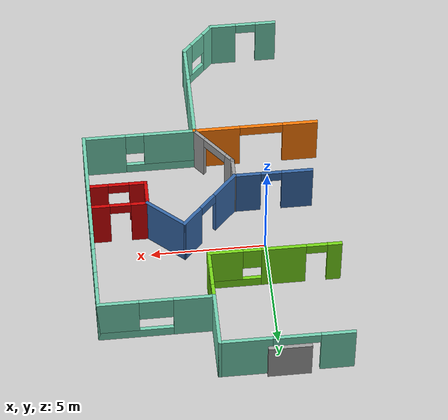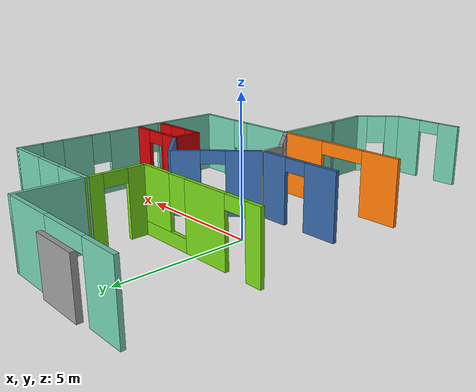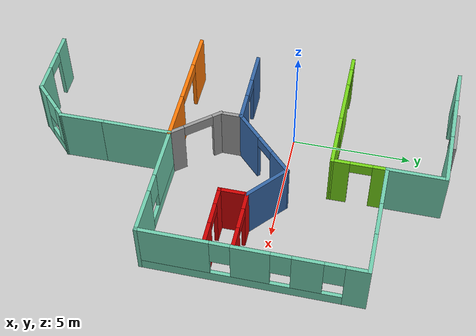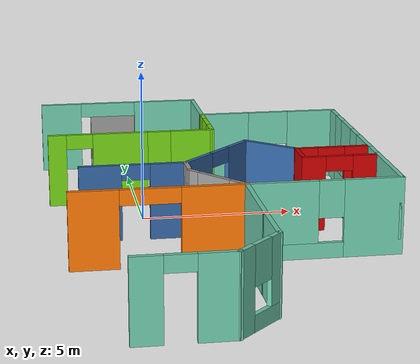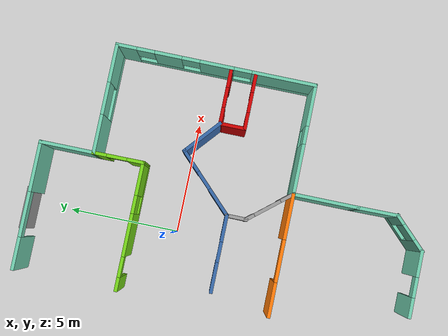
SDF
<sdf version="1.6">
 <model name="model">
  <pose>-1.34408 -2.0758 0 0 -0 0</pose>
  <link name="Door_1">
   <collision name="Door_1_Collision">
    <geometry><box><size>1.8483 0.2 2</size></box></geometry>
    <pose>0 0 1 0 -0 0</pose>
   </collision>
   <visual name="Door_1_Visual">
    <pose>0 0 1 0 -0 0</pose>
    <geometry><box><size>1.8483 0.2 2</size></box></geometry>
    <material>
     <script><uri>file://media/materials/scripts/gazebo.material</uri><name>Gazebo/Grey</name></script>
    </material>
   </visual>
   <pose>1.0621 8.71185 0 0 -0 0</pose>
  </link>
  <link name="Wall_10">
   <pose>6.41224 6.21961 0 0 -0 0</pose>
   <visual name="Wall_10_Visual_0">
    <pose>-1.6072 0 1.25 0 -0 0</pose>
    <geometry><box><size>1.78559 0.15 2.5</size></box></geometry>
    <material>
     <script><uri>file://media/materials/scripts/gazebo.material</uri><name>Gazebo/Grey</name></script>
     <ambient>0.435294 0.796078 0.67451 1</ambient>
    </material>
    <meta><layer>0</layer></meta>
   </visual>
   <collision name="Wall_10_Collision_0">
    <geometry><box><size>1.78559 0.15 2.5</size></box></geometry>
    <pose>-1.6072 0 1.25 0 -0 0</pose>
   </collision>
   <visual name="Wall_10_Visual_1">
    <pose>0.892797 0 0.25 0 -0 0</pose>
    <geometry><box><size>3.21441 0.15 0.5</size></box></geometry>
    <material>
     <script><uri>file://media/materials/scripts/gazebo.material</uri><name>Gazebo/Grey</name></script>
     <ambient>0.435294 0.796078 0.67451 1</ambient>
    </material>
    <meta><layer>0</layer></meta>
   </visual>
   <collision name="Wall_10_Collision_1">
    <geometry><box><size>3.21441 0.15 0.5</size></box></geometry>
    <pose>0.892797 0 0.25 0 -0 0</pose>
   </collision>
   <visual name="Wall_10_Visual_2">
    <pose>1.61399 0 1.5 0 -0 0</pose>
    <geometry><box><size>1.77201 0.15 2</size></box></geometry>
    <material>
     <script><uri>file://media/materials/scripts/gazebo.material</uri><name>Gazebo/Grey</name></script>
     <ambient>0.435294 0.796078 0.67451 1</ambient>
    </material>
    <meta><layer>0</layer></meta>
   </visual>
   <collision name="Wall_10_Collision_2">
    <geometry><box><size>1.77201 0.15 2</size></box></geometry>
    <pose>1.61399 0 1.5 0 -0 0</pose>
   </collision>
   <visual name="Wall_10_Visual_3">
    <pose>0.006791 0 1.9 0 -0 0</pose>
    <geometry><box><size>1.4424 0.15 1.2</size></box></geometry>
    <material>
     <script><uri>file://media/materials/scripts/gazebo.material</uri><name>Gazebo/Grey</name></script>
     <ambient>0.435294 0.796078 0.67451 1</ambient>
    </material>
    <meta><layer>0</layer></meta>
   </visual>
   <collision name="Wall_10_Collision_3">
    <geometry><box><size>1.4424 0.15 1.2</size></box></geometry>
    <pose>0.006791 0 1.9 0 -0 0</pose>
   </collision>
  </link>
  <link name="Wall_11">
   <pose>8.83724 1.79461 0 0 -0 -1.5708</pose>
   <visual name="Wall_11_Visual_0">
    <pose>-4.02485 0 1.25 0 -0 0</pose>
    <geometry><box><size>0.950301 0.15 2.5</size></box></geometry>
    <material>
     <script><uri>file://media/materials/scripts/gazebo.material</uri><name>Gazebo/Grey</name></script>
     <ambient>0.435294 0.796078 0.67451 1</ambient>
    </material>
    <meta><layer>0</layer></meta>
   </visual>
   <collision name="Wall_11_Collision_0">
    <geometry><box><size>0.950301 0.15 2.5</size></box></geometry>
    <pose>-4.02485 0 1.25 0 -0 0</pose>
   </collision>
   <visual name="Wall_11_Visual_1">
    <pose>0.47515 0 0.25 0 -0 0</pose>
    <geometry><box><size>8.0497 0.15 0.5</size></box></geometry>
    <material>
     <script><uri>file://media/materials/scripts/gazebo.material</uri><name>Gazebo/Grey</name></script>
     <ambient>0.435294 0.796078 0.67451 1</ambient>
    </material>
    <meta><layer>0</layer></meta>
   </visual>
   <collision name="Wall_11_Collision_1">
    <geometry><box><size>8.0497 0.15 0.5</size></box></geometry>
    <pose>0.47515 0 0.25 0 -0 0</pose>
   </collision>
   <visual name="Wall_11_Visual_2">
    <pose>-2.14022 0 1.5 0 -0 0</pose>
    <geometry><box><size>1.21896 0.15 2</size></box></geometry>
    <material>
     <script><uri>file://media/materials/scripts/gazebo.material</uri><name>Gazebo/Grey</name></script>
     <ambient>0.435294 0.796078 0.67451 1</ambient>
    </material>
    <meta><layer>0</layer></meta>
   </visual>
   <collision name="Wall_11_Collision_2">
    <geometry><box><size>1.21896 0.15 2</size></box></geometry>
    <pose>-2.14022 0 1.5 0 -0 0</pose>
   </collision>
   <visual name="Wall_11_Visual_3">
    <pose>0.031685 0 1.5 0 -0 0</pose>
    <geometry><box><size>1.52486 0.15 2</size></box></geometry>
    <material>
     <script><uri>file://media/materials/scripts/gazebo.material</uri><name>Gazebo/Grey</name></script>
     <ambient>0.435294 0.796078 0.67451 1</ambient>
    </material>
    <meta><layer>0</layer></meta>
   </visual>
   <collision name="Wall_11_Collision_3">
    <geometry><box><size>1.52486 0.15 2</size></box></geometry>
    <pose>0.031685 0 1.5 0 -0 0</pose>
   </collision>
   <visual name="Wall_11_Visual_4">
    <pose>3.04706 0 1.5 0 -0 0</pose>
    <geometry><box><size>2.90589 0.15 2</size></box></geometry>
    <material>
     <script><uri>file://media/materials/scripts/gazebo.material</uri><name>Gazebo/Grey</name></script>
     <ambient>0.435294 0.796078 0.67451 1</ambient>
    </material>
    <meta><layer>0</layer></meta>
   </visual>
   <collision name="Wall_11_Collision_4">
    <geometry><box><size>2.90589 0.15 2</size></box></geometry>
    <pose>3.04706 0 1.5 0 -0 0</pose>
   </collision>
   <visual name="Wall_11_Visual_5">
    <pose>-3.1497 0 1.9 0 -0 0</pose>
    <geometry><box><size>0.8 0.15 1.2</size></box></geometry>
    <material>
     <script><uri>file://media/materials/scripts/gazebo.material</uri><name>Gazebo/Grey</name></script>
     <ambient>0.435294 0.796078 0.67451 1</ambient>
    </material>
    <meta><layer>0</layer></meta>
   </visual>
   <collision name="Wall_11_Collision_5">
    <geometry><box><size>0.8 0.15 1.2</size></box></geometry>
    <pose>-3.1497 0 1.9 0 -0 0</pose>
   </collision>
   <visual name="Wall_11_Visual_6">
    <pose>-1.13074 0 1.9 0 -0 0</pose>
    <geometry><box><size>0.8 0.15 1.2</size></box></geometry>
    <material>
     <script><uri>file://media/materials/scripts/gazebo.material</uri><name>Gazebo/Grey</name></script>
     <ambient>0.435294 0.796078 0.67451 1</ambient>
    </material>
    <meta><layer>0</layer></meta>
   </visual>
   <collision name="Wall_11_Collision_6">
    <geometry><box><size>0.8 0.15 1.2</size></box></geometry>
    <pose>-1.13074 0 1.9 0 -0 0</pose>
   </collision>
   <visual name="Wall_11_Visual_7">
    <pose>1.19411 0 1.9 0 -0 0</pose>
    <geometry><box><size>0.8 0.15 1.2</size></box></geometry>
    <material>
     <script><uri>file://media/materials/scripts/gazebo.material</uri><name>Gazebo/Grey</name></script>
     <ambient>0.435294 0.796078 0.67451 1</ambient>
    </material>
    <meta><layer>0</layer></meta>
   </visual>
   <collision name="Wall_11_Collision_7">
    <geometry><box><size>0.8 0.15 1.2</size></box></geometry>
    <pose>1.19411 0 1.9 0 -0 0</pose>
   </collision>
  </link>
  <link name="Wall_12">
   <pose>6.41224 -2.63039 0 0 -0 3.14159</pose>
   <visual name="Wall_12_Visual_0">
    <pose>-1.55241 0 1.25 0 -0 0</pose>
    <geometry><box><size>1.89517 0.15 2.5</size></box></geometry>
    <material>
     <script><uri>file://media/materials/scripts/gazebo.material</uri><name>Gazebo/Grey</name></script>
     <ambient>0.435294 0.796078 0.67451 1</ambient>
    </material>
    <meta><layer>0</layer></meta>
   </visual>
   <collision name="Wall_12_Collision_0">
    <geometry><box><size>1.89517 0.15 2.5</size></box></geometry>
    <pose>-1.55241 0 1.25 0 -0 0</pose>
   </collision>
   <visual name="Wall_12_Visual_1">
    <pose>0.947587 0 0.25 0 -0 0</pose>
    <geometry><box><size>3.10483 0.15 0.5</size></box></geometry>
    <material>
     <script><uri>file://media/materials/scripts/gazebo.material</uri><name>Gazebo/Grey</name></script>
     <ambient>0.435294 0.796078 0.67451 1</ambient>
    </material>
    <meta><layer>0</layer></meta>
   </visual>
   <collision name="Wall_12_Collision_1">
    <geometry><box><size>3.10483 0.15 0.5</size></box></geometry>
    <pose>0.947587 0 0.25 0 -0 0</pose>
   </collision>
   <visual name="Wall_12_Visual_2">
    <pose>1.34759 0 1.5 0 -0 0</pose>
    <geometry><box><size>2.30483 0.15 2</size></box></geometry>
    <material>
     <script><uri>file://media/materials/scripts/gazebo.material</uri><name>Gazebo/Grey</name></script>
     <ambient>0.435294 0.796078 0.67451 1</ambient>
    </material>
    <meta><layer>0</layer></meta>
   </visual>
   <collision name="Wall_12_Collision_2">
    <geometry><box><size>2.30483 0.15 2</size></box></geometry>
    <pose>1.34759 0 1.5 0 -0 0</pose>
   </collision>
   <visual name="Wall_12_Visual_3">
    <pose>-0.204827 0 1.9 0 -0 0</pose>
    <geometry><box><size>0.8 0.15 1.2</size></box></geometry>
    <material>
     <script><uri>file://media/materials/scripts/gazebo.material</uri><name>Gazebo/Grey</name></script>
     <ambient>0.435294 0.796078 0.67451 1</ambient>
    </material>
    <meta><layer>0</layer></meta>
   </visual>
   <collision name="Wall_12_Collision_3">
    <geometry><box><size>0.8 0.15 1.2</size></box></geometry>
    <pose>-0.204827 0 1.9 0 -0 0</pose>
   </collision>
  </link>
  <link name="Wall_13">
   <collision name="Wall_13_Collision">
    <geometry><box><size>3 0.15 2.5</size></box></geometry>
    <pose>0 0 1.25 0 -0 0</pose>
   </collision>
   <visual name="Wall_13_Visual">
    <pose>0 0 1.25 0 -0 0</pose>
    <geometry><box><size>3 0.15 2.5</size></box></geometry>
    <material>
     <script><uri>file://media/materials/scripts/gazebo.material</uri><name>Gazebo/Grey</name></script>
     <ambient>0.435294 0.796078 0.67451 1</ambient>
    </material>
    <meta><layer>0</layer></meta>
   </visual>
   <pose>3.98724 -4.05539 0 0 -0 -1.5708</pose>
  </link>
  <link name="Wall_31">
   <pose>0.83091 0.006871 0 0 -0 0</pose>
   <visual name="Wall_31_Visual_0">
    <pose>-1.06671 0 1.25 0 -0 0</pose>
    <geometry><box><size>1.36658 0.15 2.5</size></box></geometry>
    <material>
     <script><uri>file://media/materials/scripts/gazebo.material</uri><name>Gazebo/Grey</name></script>
     <ambient>0.203922 0.396078 0.643137 1</ambient>
    </material>
    <meta><layer>0</layer></meta>
   </visual>
   <collision name="Wall_31_Collision_0">
    <geometry><box><size>1.36658 0.15 2.5</size></box></geometry>
    <pose>-1.06671 0 1.25 0 -0 0</pose>
   </collision>
   <visual name="Wall_31_Visual_1">
    <pose>1.13329 0 1.25 0 -0 0</pose>
    <geometry><box><size>1.23341 0.15 2.5</size></box></geometry>
    <material>
     <script><uri>file://media/materials/scripts/gazebo.material</uri><name>Gazebo/Grey</name></script>
     <ambient>0.203922 0.396078 0.643137 1</ambient>
    </material>
    <meta><layer>0</layer></meta>
   </visual>
   <collision name="Wall_31_Collision_1">
    <geometry><box><size>1.23341 0.15 2.5</size></box></geometry>
    <pose>1.13329 0 1.25 0 -0 0</pose>
   </collision>
   <visual name="Wall_31_Visual_2">
    <pose>0.066585 0 2.25 0 -0 0</pose>
    <geometry><box><size>0.9 0.15 0.5</size></box></geometry>
    <material>
     <script><uri>file://media/materials/scripts/gazebo.material</uri><name>Gazebo/Grey</name></script>
     <ambient>0.203922 0.396078 0.643137 1</ambient>
    </material>
    <meta><layer>0</layer></meta>
   </visual>
   <collision name="Wall_31_Collision_2">
    <geometry><box><size>0.9 0.15 0.5</size></box></geometry>
    <pose>0.066585 0 2.25 0 -0 0</pose>
   </collision>
  </link>
  <link name="Wall_35">
   <pose>3.69031 1.19128 0 0 -0 0.785398</pose>
   <visual name="Wall_35_Visual_0">
    <pose>-1.02961 0 1.25 0 -0 0</pose>
    <geometry><box><size>1.44079 0.15 2.5</size></box></geometry>
    <material>
     <script><uri>file://media/materials/scripts/gazebo.material</uri><name>Gazebo/Grey</name></script>
     <ambient>0.203922 0.396078 0.643137 1</ambient>
    </material>
    <meta><layer>0</layer></meta>
   </visual>
   <collision name="Wall_35_Collision_0">
    <geometry><box><size>1.44079 0.15 2.5</size></box></geometry>
    <pose>-1.02961 0 1.25 0 -0 0</pose>
   </collision>
   <visual name="Wall_35_Visual_1">
    <pose>1.17039 0 1.25 0 -0 0</pose>
    <geometry><box><size>1.15921 0.15 2.5</size></box></geometry>
    <material>
     <script><uri>file://media/materials/scripts/gazebo.material</uri><name>Gazebo/Grey</name></script>
     <ambient>0.203922 0.396078 0.643137 1</ambient>
    </material>
    <meta><layer>0</layer></meta>
   </visual>
   <collision name="Wall_35_Collision_1">
    <geometry><box><size>1.15921 0.15 2.5</size></box></geometry>
    <pose>1.17039 0 1.25 0 -0 0</pose>
   </collision>
   <visual name="Wall_35_Visual_2">
    <pose>0.140787 0 2.25 0 -0 0</pose>
    <geometry><box><size>0.9 0.15 0.5</size></box></geometry>
    <material>
     <script><uri>file://media/materials/scripts/gazebo.material</uri><name>Gazebo/Grey</name></script>
     <ambient>0.203922 0.396078 0.643137 1</ambient>
    </material>
    <meta><layer>0</layer></meta>
   </visual>
   <collision name="Wall_35_Collision_2">
    <geometry><box><size>0.9 0.15 0.5</size></box></geometry>
    <pose>0.140787 0 2.25 0 -0 0</pose>
   </collision>
  </link>
  <link name="Wall_37">
   <pose>1.19907 4.02731 0 0 -0 0</pose>
   <visual name="Wall_37_Visual_0">
    <pose>-2.56055 0 1.25 0 -0 0</pose>
    <geometry><box><size>0.628904 0.15 2.5</size></box></geometry>
    <material>
     <script><uri>file://media/materials/scripts/gazebo.material</uri><name>Gazebo/Grey</name></script>
     <ambient>0.45098 0.823529 0.0862745 1</ambient>
    </material>
    <meta><layer>0</layer></meta>
   </visual>
   <collision name="Wall_37_Collision_0">
    <geometry><box><size>0.628904 0.15 2.5</size></box></geometry>
    <pose>-2.56055 0 1.25 0 -0 0</pose>
   </collision>
   <visual name="Wall_37_Visual_1">
    <pose>-0.397199 0 1.25 0 -0 0</pose>
    <geometry><box><size>1.89779 0.15 2.5</size></box></geometry>
    <material>
     <script><uri>file://media/materials/scripts/gazebo.material</uri><name>Gazebo/Grey</name></script>
     <ambient>0.45098 0.823529 0.0862745 1</ambient>
    </material>
    <meta><layer>0</layer></meta>
   </visual>
   <collision name="Wall_37_Collision_1">
    <geometry><box><size>1.89779 0.15 2.5</size></box></geometry>
    <pose>-0.397199 0 1.25 0 -0 0</pose>
   </collision>
   <visual name="Wall_37_Visual_2">
    <pose>1.71335 0 0.25 0 -0 0</pose>
    <geometry><box><size>2.3233 0.15 0.5</size></box></geometry>
    <material>
     <script><uri>file://media/materials/scripts/gazebo.material</uri><name>Gazebo/Grey</name></script>
     <ambient>0.45098 0.823529 0.0862745 1</ambient>
    </material>
    <meta><layer>0</layer></meta>
   </visual>
   <collision name="Wall_37_Collision_2">
    <geometry><box><size>2.3233 0.15 0.5</size></box></geometry>
    <pose>1.71335 0 0.25 0 -0 0</pose>
   </collision>
   <visual name="Wall_37_Visual_3">
    <pose>2.11335 0 1.5 0 -0 0</pose>
    <geometry><box><size>1.5233 0.15 2</size></box></geometry>
    <material>
     <script><uri>file://media/materials/scripts/gazebo.material</uri><name>Gazebo/Grey</name></script>
     <ambient>0.45098 0.823529 0.0862745 1</ambient>
    </material>
    <meta><layer>0</layer></meta>
   </visual>
   <collision name="Wall_37_Collision_3">
    <geometry><box><size>1.5233 0.15 2</size></box></geometry>
    <pose>2.11335 0 1.5 0 -0 0</pose>
   </collision>
   <visual name="Wall_37_Visual_4">
    <pose>0.951698 0 1.9 0 -0 0</pose>
    <geometry><box><size>0.8 0.15 1.2</size></box></geometry>
    <material>
     <script><uri>file://media/materials/scripts/gazebo.material</uri><name>Gazebo/Grey</name></script>
     <ambient>0.45098 0.823529 0.0862745 1</ambient>
    </material>
    <meta><layer>0</layer></meta>
   </visual>
   <collision name="Wall_37_Collision_4">
    <geometry><box><size>0.8 0.15 1.2</size></box></geometry>
    <pose>0.951698 0 1.9 0 -0 0</pose>
   </collision>
   <visual name="Wall_37_Visual_5">
    <pose>-1.7961 0 2.25 0 -0 0</pose>
    <geometry><box><size>0.9 0.15 0.5</size></box></geometry>
    <material>
     <script><uri>file://media/materials/scripts/gazebo.material</uri><name>Gazebo/Grey</name></script>
     <ambient>0.45098 0.823529 0.0862745 1</ambient>
    </material>
    <meta><layer>0</layer></meta>
   </visual>
   <collision name="Wall_37_Collision_5">
    <geometry><box><size>0.9 0.15 0.5</size></box></geometry>
    <pose>-1.7961 0 2.25 0 -0 0</pose>
   </collision>
  </link>
  <link name="Wall_38">
   <pose>3.99316 5.12346 0 0 -0 1.57619</pose>
   <visual name="Wall_38_Visual_0">
    <pose>-0.775994 0 1.25 0 -0 0</pose>
    <geometry><box><size>0.790336 0.15 2.5</size></box></geometry>
    <material>
     <script><uri>file://media/materials/scripts/gazebo.material</uri><name>Gazebo/Grey</name></script>
     <ambient>0.45098 0.823529 0.0862745 1</ambient>
    </material>
    <meta><layer>0</layer></meta>
   </visual>
   <collision name="Wall_38_Collision_0">
    <geometry><box><size>0.790336 0.15 2.5</size></box></geometry>
    <pose>-0.775994 0 1.25 0 -0 0</pose>
   </collision>
   <visual name="Wall_38_Visual_1">
    <pose>0.845168 0 1.25 0 -0 0</pose>
    <geometry><box><size>0.651988 0.15 2.5</size></box></geometry>
    <material>
     <script><uri>file://media/materials/scripts/gazebo.material</uri><name>Gazebo/Grey</name></script>
     <ambient>0.45098 0.823529 0.0862745 1</ambient>
    </material>
    <meta><layer>0</layer></meta>
   </visual>
   <collision name="Wall_38_Collision_1">
    <geometry><box><size>0.651988 0.15 2.5</size></box></geometry>
    <pose>0.845168 0 1.25 0 -0 0</pose>
   </collision>
   <visual name="Wall_38_Visual_2">
    <pose>0.069174 0 2.25 0 -0 0</pose>
    <geometry><box><size>0.9 0.15 0.5</size></box></geometry>
    <material>
     <script><uri>file://media/materials/scripts/gazebo.material</uri><name>Gazebo/Grey</name></script>
     <ambient>0.45098 0.823529 0.0862745 1</ambient>
    </material>
    <meta><layer>0</layer></meta>
   </visual>
   <collision name="Wall_38_Collision_2">
    <geometry><box><size>0.9 0.15 0.5</size></box></geometry>
    <pose>0.069174 0 2.25 0 -0 0</pose>
   </collision>
  </link>
  <link name="Wall_40">
   <pose>7.52447 1.10748 0 0 -0 0</pose>
   <visual name="Wall_40_Visual_0">
    <pose>-0.852595 0 1.25 0 -0 0</pose>
    <geometry><box><size>0.794811 0.15 2.5</size></box></geometry>
    <material>
     <script><uri>file://media/materials/scripts/gazebo.material</uri><name>Gazebo/Grey</name></script>
     <ambient>0.8 0 0 1</ambient>
    </material>
    <meta><layer>0</layer></meta>
   </visual>
   <collision name="Wall_40_Collision_0">
    <geometry><box><size>0.794811 0.15 2.5</size></box></geometry>
    <pose>-0.852595 0 1.25 0 -0 0</pose>
   </collision>
   <visual name="Wall_40_Visual_1">
    <pose>0.847405 0 1.25 0 -0 0</pose>
    <geometry><box><size>0.805189 0.15 2.5</size></box></geometry>
    <material>
     <script><uri>file://media/materials/scripts/gazebo.material</uri><name>Gazebo/Grey</name></script>
     <ambient>0.8 0 0 1</ambient>
    </material>
    <meta><layer>0</layer></meta>
   </visual>
   <collision name="Wall_40_Collision_1">
    <geometry><box><size>0.805189 0.15 2.5</size></box></geometry>
    <pose>0.847405 0 1.25 0 -0 0</pose>
   </collision>
   <visual name="Wall_40_Visual_2">
    <pose>-0.005189 0 2.25 0 -0 0</pose>
    <geometry><box><size>0.9 0.15 0.5</size></box></geometry>
    <material>
     <script><uri>file://media/materials/scripts/gazebo.material</uri><name>Gazebo/Grey</name></script>
     <ambient>0.8 0 0 1</ambient>
    </material>
    <meta><layer>0</layer></meta>
   </visual>
   <collision name="Wall_40_Collision_2">
    <geometry><box><size>0.9 0.15 0.5</size></box></geometry>
    <pose>-0.005189 0 2.25 0 -0 0</pose>
   </collision>
  </link>
  <link name="Wall_42">
   <collision name="Wall_42_Collision">
    <geometry><box><size>1.25 0.15 2.5</size></box></geometry>
    <pose>0 0 1.25 0 -0 0</pose>
   </collision>
   <visual name="Wall_42_Visual">
    <pose>0 0 1.25 0 -0 0</pose>
    <geometry><box><size>1.25 0.15 2.5</size></box></geometry>
    <material>
     <script><uri>file://media/materials/scripts/gazebo.material</uri><name>Gazebo/Grey</name></script>
     <ambient>0.8 0 0 1</ambient>
    </material>
    <meta><layer>0</layer></meta>
   </visual>
   <pose>6.34947 0.557478 0 0 -0 -1.5708</pose>
  </link>
  <link name="Wall_43">
   <pose>7.52447 0.007478 0 0 -0 0</pose>
   <visual name="Wall_43_Visual_0">
    <pose>-0.852595 0 1.25 0 -0 0</pose>
    <geometry><box><size>0.794811 0.15 2.5</size></box></geometry>
    <material>
     <script><uri>file://media/materials/scripts/gazebo.material</uri><name>Gazebo/Grey</name></script>
     <ambient>0.8 0 0 1</ambient>
    </material>
    <meta><layer>0</layer></meta>
   </visual>
   <collision name="Wall_43_Collision_0">
    <geometry><box><size>0.794811 0.15 2.5</size></box></geometry>
    <pose>-0.852595 0 1.25 0 -0 0</pose>
   </collision>
   <visual name="Wall_43_Visual_1">
    <pose>0.847405 0 1.25 0 -0 0</pose>
    <geometry><box><size>0.805189 0.15 2.5</size></box></geometry>
    <material>
     <script><uri>file://media/materials/scripts/gazebo.material</uri><name>Gazebo/Grey</name></script>
     <ambient>0.8 0 0 1</ambient>
    </material>
    <meta><layer>0</layer></meta>
   </visual>
   <collision name="Wall_43_Collision_1">
    <geometry><box><size>0.805189 0.15 2.5</size></box></geometry>
    <pose>0.847405 0 1.25 0 -0 0</pose>
   </collision>
   <visual name="Wall_43_Visual_2">
    <pose>-0.005189 0 2.25 0 -0 0</pose>
    <geometry><box><size>0.9 0.15 0.5</size></box></geometry>
    <material>
     <script><uri>file://media/materials/scripts/gazebo.material</uri><name>Gazebo/Grey</name></script>
     <ambient>0.8 0 0 1</ambient>
    </material>
    <meta><layer>0</layer></meta>
   </visual>
   <collision name="Wall_43_Collision_2">
    <geometry><box><size>0.9 0.15 0.5</size></box></geometry>
    <pose>-0.005189 0 2.25 0 -0 0</pose>
   </collision>
  </link>
  <link name="Wall_45">
   <collision name="Wall_45_Collision">
    <geometry><box><size>2.09505 0.15 2.5</size></box></geometry>
    <pose>0 0 1.25 0 -0 0</pose>
   </collision>
   <visual name="Wall_45_Visual">
    <pose>0 0 1.25 0 -0 0</pose>
    <geometry><box><size>2.09505 0.15 2.5</size></box></geometry>
    <material>
     <script><uri>file://media/materials/scripts/gazebo.material</uri><name>Gazebo/Grey</name></script>
     <ambient>0.203922 0.396078 0.643137 1</ambient>
    </material>
    <meta><layer>0</layer></meta>
   </visual>
   <pose>5.6121 1.74158 0 0 -0 2.43136</pose>
  </link>
  <link name="Wall_59">
   <pose>1.27039 -8.53854 0 0 -0 0</pose>
   <visual name="Wall_59_Visual_0">
    <pose>-1.04657 0 1.25 0 -0 0</pose>
    <geometry><box><size>0.906857 0.15 2.5</size></box></geometry>
    <material>
     <script><uri>file://media/materials/scripts/gazebo.material</uri><name>Gazebo/Grey</name></script>
     <ambient>0.435294 0.796078 0.67451 1</ambient>
    </material>
    <meta><layer>0</layer></meta>
   </visual>
   <collision name="Wall_59_Collision_0">
    <geometry><box><size>0.906857 0.15 2.5</size></box></geometry>
    <pose>-1.04657 0 1.25 0 -0 0</pose>
   </collision>
   <visual name="Wall_59_Visual_1">
    <pose>0.903429 0 1.25 0 -0 0</pose>
    <geometry><box><size>1.19314 0.15 2.5</size></box></geometry>
    <material>
     <script><uri>file://media/materials/scripts/gazebo.material</uri><name>Gazebo/Grey</name></script>
     <ambient>0.435294 0.796078 0.67451 1</ambient>
    </material>
    <meta><layer>0</layer></meta>
   </visual>
   <collision name="Wall_59_Collision_1">
    <geometry><box><size>1.19314 0.15 2.5</size></box></geometry>
    <pose>0.903429 0 1.25 0 -0 0</pose>
   </collision>
   <visual name="Wall_59_Visual_2">
    <pose>-0.143143 0 2.25 0 -0 0</pose>
    <geometry><box><size>0.9 0.15 0.5</size></box></geometry>
    <material>
     <script><uri>file://media/materials/scripts/gazebo.material</uri><name>Gazebo/Grey</name></script>
     <ambient>0.435294 0.796078 0.67451 1</ambient>
    </material>
    <meta><layer>0</layer></meta>
   </visual>
   <collision name="Wall_59_Collision_2">
    <geometry><box><size>0.9 0.15 0.5</size></box></geometry>
    <pose>-0.143143 0 2.25 0 -0 0</pose>
   </collision>
  </link>
  <link name="Wall_62">
   <pose>3.34946 -7.88447 0 0 -0 0.785398</pose>
   <visual name="Wall_62_Visual_0">
    <pose>-0.661474 0 1.25 0 -0 0</pose>
    <geometry><box><size>0.677052 0.15 2.5</size></box></geometry>
    <material>
     <script><uri>file://media/materials/scripts/gazebo.material</uri><name>Gazebo/Grey</name></script>
     <ambient>0.435294 0.796078 0.67451 1</ambient>
    </material>
    <meta><layer>0</layer></meta>
   </visual>
   <collision name="Wall_62_Collision_0">
    <geometry><box><size>0.677052 0.15 2.5</size></box></geometry>
    <pose>-0.661474 0 1.25 0 -0 0</pose>
   </collision>
   <visual name="Wall_62_Visual_1">
    <pose>0.338526 0 0.25 0 -0 0</pose>
    <geometry><box><size>1.32295 0.15 0.5</size></box></geometry>
    <material>
     <script><uri>file://media/materials/scripts/gazebo.material</uri><name>Gazebo/Grey</name></script>
     <ambient>0.435294 0.796078 0.67451 1</ambient>
    </material>
    <meta><layer>0</layer></meta>
   </visual>
   <collision name="Wall_62_Collision_1">
    <geometry><box><size>1.32295 0.15 0.5</size></box></geometry>
    <pose>0.338526 0 0.25 0 -0 0</pose>
   </collision>
   <visual name="Wall_62_Visual_2">
    <pose>0.738526 0 1.5 0 -0 0</pose>
    <geometry><box><size>0.522948 0.15 2</size></box></geometry>
    <material>
     <script><uri>file://media/materials/scripts/gazebo.material</uri><name>Gazebo/Grey</name></script>
     <ambient>0.435294 0.796078 0.67451 1</ambient>
    </material>
    <meta><layer>0</layer></meta>
   </visual>
   <collision name="Wall_62_Collision_2">
    <geometry><box><size>0.522948 0.15 2</size></box></geometry>
    <pose>0.738526 0 1.5 0 -0 0</pose>
   </collision>
   <visual name="Wall_62_Visual_3">
    <pose>0.077052 0 1.9 0 -0 0</pose>
    <geometry><box><size>0.8 0.15 1.2</size></box></geometry>
    <material>
     <script><uri>file://media/materials/scripts/gazebo.material</uri><name>Gazebo/Grey</name></script>
     <ambient>0.435294 0.796078 0.67451 1</ambient>
    </material>
    <meta><layer>0</layer></meta>
   </visual>
   <collision name="Wall_62_Collision_3">
    <geometry><box><size>0.8 0.15 1.2</size></box></geometry>
    <pose>0.077052 0 1.9 0 -0 0</pose>
   </collision>
  </link>
  <link name="Wall_63">
   <collision name="Wall_63_Collision">
    <geometry><box><size>1.90008 0.15 2.5</size></box></geometry>
    <pose>0 0 1.25 0 -0 0</pose>
   </collision>
   <visual name="Wall_63_Visual">
    <pose>0 0 1.25 0 -0 0</pose>
    <geometry><box><size>1.90008 0.15 2.5</size></box></geometry>
    <material>
     <script><uri>file://media/materials/scripts/gazebo.material</uri><name>Gazebo/Grey</name></script>
     <ambient>0.435294 0.796078 0.67451 1</ambient>
    </material>
    <meta><layer>0</layer></meta>
   </visual>
   <pose>3.99539 -6.35539 0 0 -0 1.58011</pose>
  </link>
  <link name="Wall_71">
   <pose>1.31224 -2.63039 0 0 -0 0</pose>
   <visual name="Wall_71_Visual_0">
    <pose>-1.97562 0 1.25 0 -0 0</pose>
    <geometry><box><size>1.54876 0.15 2.5</size></box></geometry>
    <material>
     <script><uri>file://media/materials/scripts/gazebo.material</uri><name>Gazebo/Grey</name></script>
     <ambient>0.996078 0.47451 0.0196078 1</ambient>
    </material>
    <meta><layer>0</layer></meta>
   </visual>
   <collision name="Wall_71_Collision_0">
    <geometry><box><size>1.54876 0.15 2.5</size></box></geometry>
    <pose>-1.97562 0 1.25 0 -0 0</pose>
   </collision>
   <visual name="Wall_71_Visual_1">
    <pose>1.71382 0 1.25 0 -0 0</pose>
    <geometry><box><size>2.07235 0.15 2.5</size></box></geometry>
    <material>
     <script><uri>file://media/materials/scripts/gazebo.material</uri><name>Gazebo/Grey</name></script>
     <ambient>0.996078 0.47451 0.0196078 1</ambient>
    </material>
    <meta><layer>0</layer></meta>
   </visual>
   <collision name="Wall_71_Collision_1">
    <geometry><box><size>2.07235 0.15 2.5</size></box></geometry>
    <pose>1.71382 0 1.25 0 -0 0</pose>
   </collision>
   <visual name="Wall_71_Visual_2">
    <pose>-0.261794 0 2.25 0 -0 0</pose>
    <geometry><box><size>1.87889 0.15 0.5</size></box></geometry>
    <material>
     <script><uri>file://media/materials/scripts/gazebo.material</uri><name>Gazebo/Grey</name></script>
     <ambient>0.996078 0.47451 0.0196078 1</ambient>
    </material>
    <meta><layer>0</layer></meta>
   </visual>
   <collision name="Wall_71_Collision_2">
    <geometry><box><size>1.87889 0.15 0.5</size></box></geometry>
    <pose>-0.261794 0 2.25 0 -0 0</pose>
   </collision>
  </link>
  <link name="Wall_8">
   <pose>1.18724 8.56961 0 0 -0 0</pose>
   <visual name="Wall_8_Visual_0">
    <pose>-2.14386 0 1.25 0 -0 0</pose>
    <geometry><box><size>1.46227 0.15 2.5</size></box></geometry>
    <material>
     <script><uri>file://media/materials/scripts/gazebo.material</uri><name>Gazebo/Grey</name></script>
     <ambient>0.435294 0.796078 0.67451 1</ambient>
    </material>
    <meta><layer>0</layer></meta>
   </visual>
   <collision name="Wall_8_Collision_0">
    <geometry><box><size>1.46227 0.15 2.5</size></box></geometry>
    <pose>-2.14386 0 1.25 0 -0 0</pose>
   </collision>
   <visual name="Wall_8_Visual_1">
    <pose>1.73176 0 1.25 0 -0 0</pose>
    <geometry><box><size>2.28648 0.15 2.5</size></box></geometry>
    <material>
     <script><uri>file://media/materials/scripts/gazebo.material</uri><name>Gazebo/Grey</name></script>
     <ambient>0.435294 0.796078 0.67451 1</ambient>
    </material>
    <meta><layer>0</layer></meta>
   </visual>
   <collision name="Wall_8_Collision_1">
    <geometry><box><size>2.28648 0.15 2.5</size></box></geometry>
    <pose>1.73176 0 1.25 0 -0 0</pose>
   </collision>
   <visual name="Wall_8_Visual_2">
    <pose>-0.412106 0 2.25 0 -0 0</pose>
    <geometry><box><size>2.00125 0.15 0.5</size></box></geometry>
    <material>
     <script><uri>file://media/materials/scripts/gazebo.material</uri><name>Gazebo/Grey</name></script>
     <ambient>0.435294 0.796078 0.67451 1</ambient>
    </material>
    <meta><layer>0</layer></meta>
   </visual>
   <collision name="Wall_8_Collision_2">
    <geometry><box><size>2.00125 0.15 0.5</size></box></geometry>
    <pose>-0.412106 0 2.25 0 -0 0</pose>
   </collision>
  </link>
  <link name="Wall_9">
   <collision name="Wall_9_Collision">
    <geometry><box><size>2.5 0.15 2.5</size></box></geometry>
    <pose>0 0 1.25 0 -0 0</pose>
   </collision>
   <visual name="Wall_9_Visual">
    <pose>0 0 1.25 0 -0 0</pose>
    <geometry><box><size>2.5 0.15 2.5</size></box></geometry>
    <material>
     <script><uri>file://media/materials/scripts/gazebo.material</uri><name>Gazebo/Grey</name></script>
     <ambient>0.435294 0.796078 0.67451 1</ambient>
    </material>
    <meta><layer>0</layer></meta>
   </visual>
   <pose>3.98724 7.39461 0 0 -0 -1.5708</pose>
  </link>
  <link name="Wall_91">
   <collision name="Wall_91_Collision">
    <geometry><box><size>1 0.15 2.5</size></box></geometry>
    <pose>0 0 1.25 0 -0 0</pose>
   </collision>
   <visual name="Wall_91_Visual">
    <pose>0 0 1.25 0 -0 0</pose>
    <geometry><box><size>1 0.15 2.5</size></box></geometry>
    <material>
     <script><uri>file://media/materials/scripts/gazebo.material</uri><name>Gazebo/Grey</name></script>
     <ambient>0 0 0 1</ambient>
    </material>
    <meta><layer>0</layer></meta>
   </visual>
   <pose>2.50591 -0.418128 0 0 -0 -1.5708</pose>
  </link>
  <link name="Wall_92">
   <pose>3.24657 -1.73676 0 0 -0 -0.878724</pose>
   <visual name="Wall_92_Visual_0">
    <pose>-0.9975 0 1.25 0 -0 0</pose>
    <geometry><box><size>0.476348 0.15 2.5</size></box></geometry>
    <material>
     <script><uri>file://media/materials/scripts/gazebo.material</uri><name>Gazebo/Grey</name></script>
     <ambient>0 0 0 1</ambient>
    </material>
    <meta><layer>0</layer></meta>
   </visual>
   <collision name="Wall_92_Collision_0">
    <geometry><box><size>0.476348 0.15 2.5</size></box></geometry>
    <pose>-0.9975 0 1.25 0 -0 0</pose>
   </collision>
   <visual name="Wall_92_Visual_1">
    <pose>0.879986 0 1.25 0 -0 0</pose>
    <geometry><box><size>0.711375 0.15 2.5</size></box></geometry>
    <material>
     <script><uri>file://media/materials/scripts/gazebo.material</uri><name>Gazebo/Grey</name></script>
     <ambient>0 0 0 1</ambient>
    </material>
    <meta><layer>0</layer></meta>
   </visual>
   <collision name="Wall_92_Collision_1">
    <geometry><box><size>0.711375 0.15 2.5</size></box></geometry>
    <pose>0.879986 0 1.25 0 -0 0</pose>
   </collision>
   <visual name="Wall_92_Visual_2">
    <pose>-0.117514 0 2.25 0 -0 0</pose>
    <geometry><box><size>1.28362 0.15 0.5</size></box></geometry>
    <material>
     <script><uri>file://media/materials/scripts/gazebo.material</uri><name>Gazebo/Grey</name></script>
     <ambient>0 0 0 1</ambient>
    </material>
    <meta><layer>0</layer></meta>
   </visual>
   <collision name="Wall_92_Collision_2">
    <geometry><box><size>1.28362 0.15 0.5</size></box></geometry>
    <pose>-0.117514 0 2.25 0 -0 0</pose>
   </collision>
  </link>
  <static>1</static>
 </model>
</sdf>
